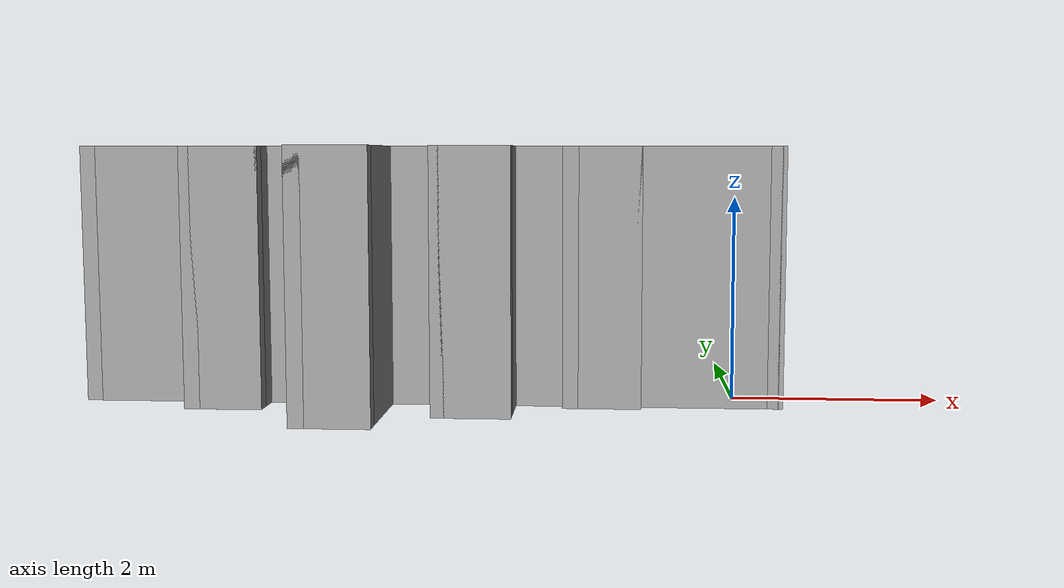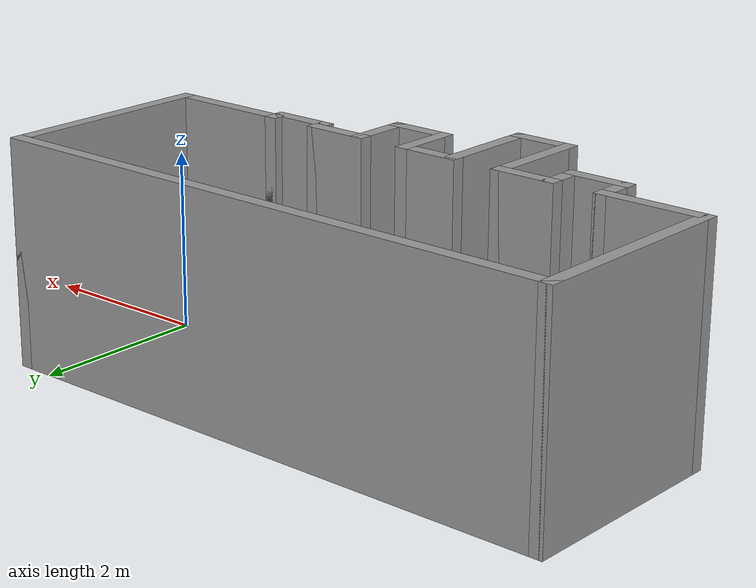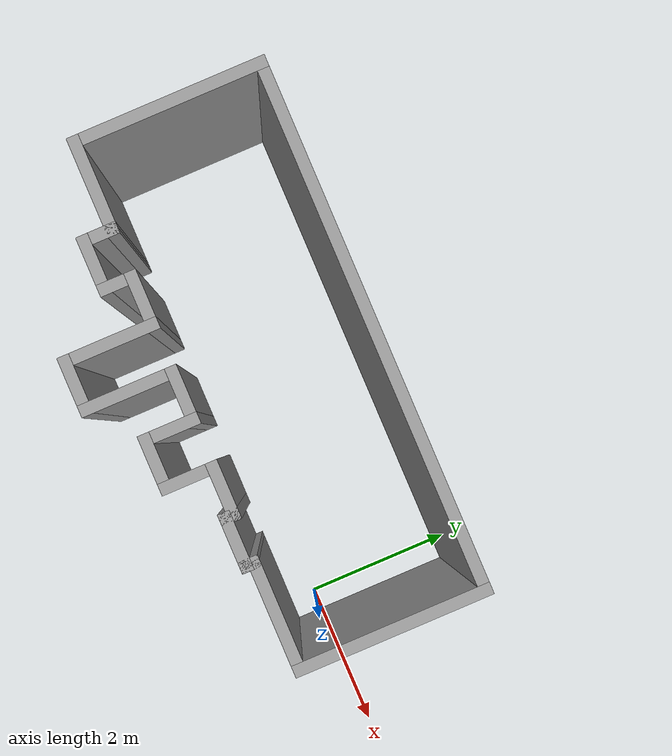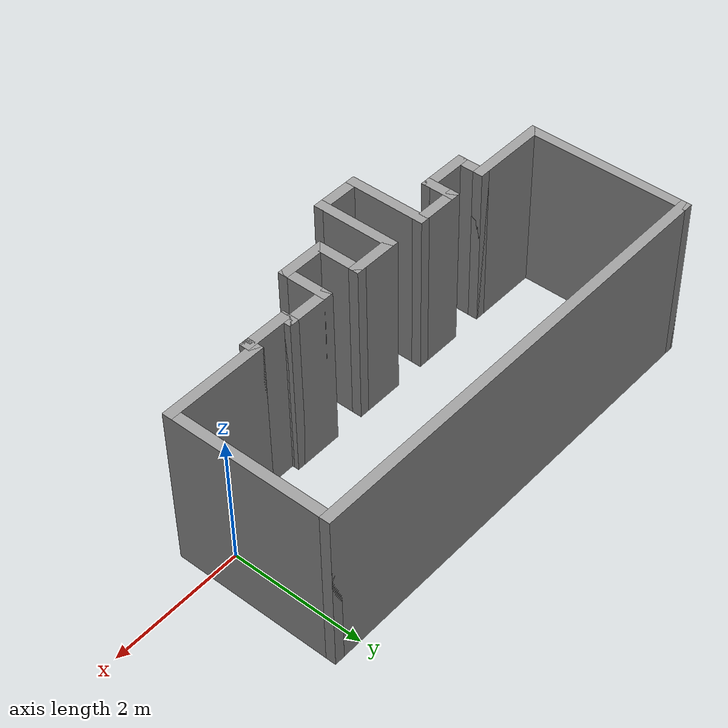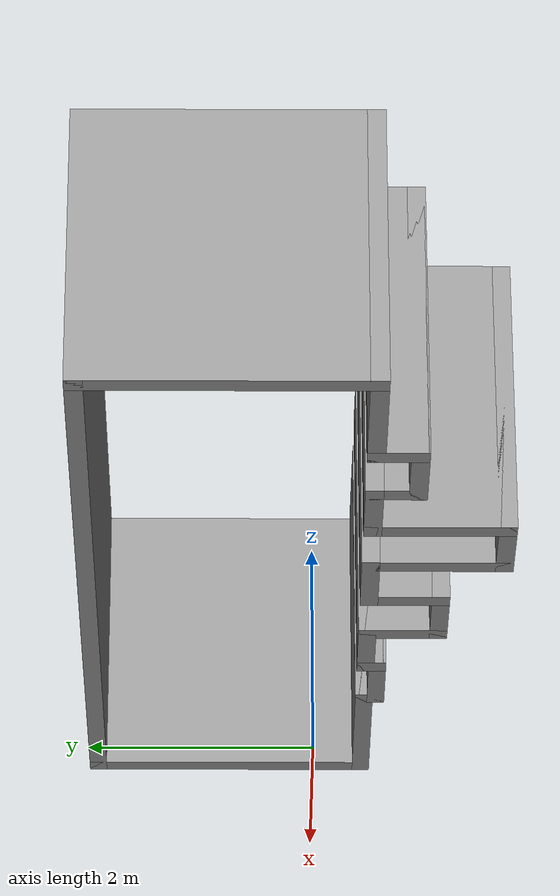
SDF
<?xml version='1.0'?>
<sdf version='1.7'>
  <model name='Parking_1'>
    <pose>-2.965 0.195 0 0 -0 0</pose>
    <link name='Wall_14'>
      <collision name='Wall_14_Collision'>
        <geometry>
          <box>
            <size>2.5 0.15 2.5</size>
          </box>
        </geometry>
        <pose>0 0 1.25 0 -0 0</pose>
      </collision>
      <visual name='Wall_14_Visual'>
        <pose>0 0 1.25 0 -0 0</pose>
        <geometry>
          <box>
            <size>2.5 0.15 2.5</size>
          </box>
        </geometry>
        <material>
          <script>
            <uri>file://media/materials/scripts/gazebo.material</uri>
            <name>Gazebo/Grey</name>
          </script>
          <ambient>1 1 1 1</ambient>
        </material>
        <meta>
          <layer>0</layer>
        </meta>
      </visual>
      <pose>3.325 0.55 0 0 -0 1.5708</pose>
    </link>
    <link name='Wall_23'>
      <collision name='Wall_23_Collision'>
        <geometry>
          <box>
            <size>0.25 0.15 2.5</size>
          </box>
        </geometry>
        <pose>0 0 1.25 0 -0 0</pose>
      </collision>
      <visual name='Wall_23_Visual'>
        <pose>0 0 1.25 0 -0 0</pose>
        <geometry>
          <box>
            <size>0.25 0.15 2.5</size>
          </box>
        </geometry>
        <material>
          <script>
            <uri>file://media/materials/scripts/gazebo.material</uri>
            <name>Gazebo/Grey</name>
          </script>
          <ambient>1 1 1 1</ambient>
        </material>
        <meta>
          <layer>0</layer>
        </meta>
      </visual>
      <pose>1.975 -0.675 0 0 -0 -1.5708</pose>
    </link>
    <link name='Wall_24'>
      <collision name='Wall_24_Collision'>
        <geometry>
          <box>
            <size>0.75 0.15 2.5</size>
          </box>
        </geometry>
        <pose>0 0 1.25 0 -0 0</pose>
      </collision>
      <visual name='Wall_24_Visual'>
        <pose>0 0 1.25 0 -0 0</pose>
        <geometry>
          <box>
            <size>0.75 0.15 2.5</size>
          </box>
        </geometry>
        <material>
          <script>
            <uri>file://media/materials/scripts/gazebo.material</uri>
            <name>Gazebo/Grey</name>
          </script>
          <ambient>1 1 1 1</ambient>
        </material>
        <meta>
          <layer>0</layer>
        </meta>
      </visual>
      <pose>1.675 -0.725 0 0 -0 3.14159</pose>
    </link>
    <link name='Wall_25'>
      <collision name='Wall_25_Collision'>
        <geometry>
          <box>
            <size>0.25 0.15 2.5</size>
          </box>
        </geometry>
        <pose>0 0 1.25 0 -0 0</pose>
      </collision>
      <visual name='Wall_25_Visual'>
        <pose>0 0 1.25 0 -0 0</pose>
        <geometry>
          <box>
            <size>0.25 0.15 2.5</size>
          </box>
        </geometry>
        <material>
          <script>
            <uri>file://media/materials/scripts/gazebo.material</uri>
            <name>Gazebo/Grey</name>
          </script>
          <ambient>1 1 1 1</ambient>
        </material>
        <meta>
          <layer>0</layer>
        </meta>
      </visual>
      <pose>1.375 -0.675 0 0 -0 1.5708</pose>
    </link>
    <link name='Wall_26'>
      <collision name='Wall_26_Collision'>
        <geometry>
          <box>
            <size>0.75 0.15 2.5</size>
          </box>
        </geometry>
        <pose>0 0 1.25 0 -0 0</pose>
      </collision>
      <visual name='Wall_26_Visual'>
        <pose>0 0 1.25 0 -0 0</pose>
        <geometry>
          <box>
            <size>0.75 0.15 2.5</size>
          </box>
        </geometry>
        <material>
          <script>
            <uri>file://media/materials/scripts/gazebo.material</uri>
            <name>Gazebo/Grey</name>
          </script>
          <ambient>1 1 1 1</ambient>
        </material>
        <meta>
          <layer>0</layer>
        </meta>
      </visual>
      <pose>1.075 -0.625 0 0 -0 3.14159</pose>
    </link>
    <link name='Wall_29'>
      <collision name='Wall_29_Collision'>
        <geometry>
          <box>
            <size>0.75 0.15 2.5</size>
          </box>
        </geometry>
        <pose>0 0 1.25 0 -0 0</pose>
      </collision>
      <visual name='Wall_29_Visual'>
        <pose>0 0 1.25 0 -0 0</pose>
        <geometry>
          <box>
            <size>0.75 0.15 2.5</size>
          </box>
        </geometry>
        <material>
          <script>
            <uri>file://media/materials/scripts/gazebo.material</uri>
            <name>Gazebo/Grey</name>
          </script>
          <ambient>1 1 1 1</ambient>
        </material>
        <meta>
          <layer>0</layer>
        </meta>
      </visual>
      <pose>0.775 -0.925 0 0 -0 -1.5708</pose>
    </link>
    <link name='Wall_30'>
      <collision name='Wall_30_Collision'>
        <geometry>
          <box>
            <size>0.75 0.15 2.5</size>
          </box>
        </geometry>
        <pose>0 0 1.25 0 -0 0</pose>
      </collision>
      <visual name='Wall_30_Visual'>
        <pose>0 0 1.25 0 -0 0</pose>
        <geometry>
          <box>
            <size>0.75 0.15 2.5</size>
          </box>
        </geometry>
        <material>
          <script>
            <uri>file://media/materials/scripts/gazebo.material</uri>
            <name>Gazebo/Grey</name>
          </script>
          <ambient>1 1 1 1</ambient>
        </material>
        <meta>
          <layer>0</layer>
        </meta>
      </visual>
      <pose>0.475 -1.225 0 0 -0 3.14159</pose>
    </link>
    <link name='Wall_31'>
      <collision name='Wall_31_Collision'>
        <geometry>
          <box>
            <size>0.75 0.15 2.5</size>
          </box>
        </geometry>
        <pose>0 0 1.25 0 -0 0</pose>
      </collision>
      <visual name='Wall_31_Visual'>
        <pose>0 0 1.25 0 -0 0</pose>
        <geometry>
          <box>
            <size>0.75 0.15 2.5</size>
          </box>
        </geometry>
        <material>
          <script>
            <uri>file://media/materials/scripts/gazebo.material</uri>
            <name>Gazebo/Grey</name>
          </script>
          <ambient>1 1 1 1</ambient>
        </material>
        <meta>
          <layer>0</layer>
        </meta>
      </visual>
      <pose>0.175 -0.925 0 0 -0 1.5708</pose>
    </link>
    <link name='Wall_33'>
      <collision name='Wall_33_Collision'>
        <geometry>
          <box>
            <size>0.75 0.15 2.5</size>
          </box>
        </geometry>
        <pose>0 0 1.25 0 -0 0</pose>
      </collision>
      <visual name='Wall_33_Visual'>
        <pose>0 0 1.25 0 -0 0</pose>
        <geometry>
          <box>
            <size>0.75 0.15 2.5</size>
          </box>
        </geometry>
        <material>
          <script>
            <uri>file://media/materials/scripts/gazebo.material</uri>
            <name>Gazebo/Grey</name>
          </script>
          <ambient>1 1 1 1</ambient>
        </material>
        <meta>
          <layer>0</layer>
        </meta>
      </visual>
      <pose>-0.125 -0.625 0 0 -0 3.14159</pose>
    </link>
    <link name='Wall_34'>
      <collision name='Wall_34_Collision'>
        <geometry>
          <box>
            <size>1.25 0.15 2.5</size>
          </box>
        </geometry>
        <pose>0 0 1.25 0 -0 0</pose>
      </collision>
      <visual name='Wall_34_Visual'>
        <pose>0 0 1.25 0 -0 0</pose>
        <geometry>
          <box>
            <size>1.25 0.15 2.5</size>
          </box>
        </geometry>
        <material>
          <script>
            <uri>file://media/materials/scripts/gazebo.material</uri>
            <name>Gazebo/Grey</name>
          </script>
          <ambient>1 1 1 1</ambient>
        </material>
        <meta>
          <layer>0</layer>
        </meta>
      </visual>
      <pose>-0.425 -1.175 0 0 -0 -1.5708</pose>
    </link>
    <link name='Wall_35'>
      <collision name='Wall_35_Collision'>
        <geometry>
          <box>
            <size>0.75 0.15 2.5</size>
          </box>
        </geometry>
        <pose>0 0 1.25 0 -0 0</pose>
      </collision>
      <visual name='Wall_35_Visual'>
        <pose>0 0 1.25 0 -0 0</pose>
        <geometry>
          <box>
            <size>0.75 0.15 2.5</size>
          </box>
        </geometry>
        <material>
          <script>
            <uri>file://media/materials/scripts/gazebo.material</uri>
            <name>Gazebo/Grey</name>
          </script>
          <ambient>1 1 1 1</ambient>
        </material>
        <meta>
          <layer>0</layer>
        </meta>
      </visual>
      <pose>-0.725 -1.725 0 0 -0 3.14159</pose>
    </link>
    <link name='Wall_36'>
      <collision name='Wall_36_Collision'>
        <geometry>
          <box>
            <size>1.25 0.15 2.5</size>
          </box>
        </geometry>
        <pose>0 0 1.25 0 -0 0</pose>
      </collision>
      <visual name='Wall_36_Visual'>
        <pose>0 0 1.25 0 -0 0</pose>
        <geometry>
          <box>
            <size>1.25 0.15 2.5</size>
          </box>
        </geometry>
        <material>
          <script>
            <uri>file://media/materials/scripts/gazebo.material</uri>
            <name>Gazebo/Grey</name>
          </script>
          <ambient>1 1 1 1</ambient>
        </material>
        <meta>
          <layer>0</layer>
        </meta>
      </visual>
      <pose>-1.025 -1.175 0 0 -0 1.5708</pose>
    </link>
    <link name='Wall_37'>
      <collision name='Wall_37_Collision'>
        <geometry>
          <box>
            <size>0.75 0.15 2.5</size>
          </box>
        </geometry>
        <pose>0 0 1.25 0 -0 0</pose>
      </collision>
      <visual name='Wall_37_Visual'>
        <pose>0 0 1.25 0 -0 0</pose>
        <geometry>
          <box>
            <size>0.75 0.15 2.5</size>
          </box>
        </geometry>
        <material>
          <script>
            <uri>file://media/materials/scripts/gazebo.material</uri>
            <name>Gazebo/Grey</name>
          </script>
          <ambient>1 1 1 1</ambient>
        </material>
        <meta>
          <layer>0</layer>
        </meta>
      </visual>
      <pose>-1.325 -0.625 0 0 -0 3.14159</pose>
    </link>
    <link name='Wall_38'>
      <collision name='Wall_38_Collision'>
        <geometry>
          <box>
            <size>0.5 0.15 2.5</size>
          </box>
        </geometry>
        <pose>0 0 1.25 0 -0 0</pose>
      </collision>
      <visual name='Wall_38_Visual'>
        <pose>0 0 1.25 0 -0 0</pose>
        <geometry>
          <box>
            <size>0.5 0.15 2.5</size>
          </box>
        </geometry>
        <material>
          <script>
            <uri>file://media/materials/scripts/gazebo.material</uri>
            <name>Gazebo/Grey</name>
          </script>
          <ambient>1 1 1 1</ambient>
        </material>
        <meta>
          <layer>0</layer>
        </meta>
      </visual>
      <pose>-1.625 -0.8 0 0 -0 -1.5708</pose>
    </link>
    <link name='Wall_39'>
      <collision name='Wall_39_Collision'>
        <geometry>
          <box>
            <size>0.75 0.15 2.5</size>
          </box>
        </geometry>
        <pose>0 0 1.25 0 -0 0</pose>
      </collision>
      <visual name='Wall_39_Visual'>
        <pose>0 0 1.25 0 -0 0</pose>
        <geometry>
          <box>
            <size>0.75 0.15 2.5</size>
          </box>
        </geometry>
        <material>
          <script>
            <uri>file://media/materials/scripts/gazebo.material</uri>
            <name>Gazebo/Grey</name>
          </script>
          <ambient>1 1 1 1</ambient>
        </material>
        <meta>
          <layer>0</layer>
        </meta>
      </visual>
      <pose>-1.925 -0.975 0 0 -0 3.14159</pose>
    </link>
    <link name='Wall_40'>
      <collision name='Wall_40_Collision'>
        <geometry>
          <box>
            <size>0.5 0.15 2.5</size>
          </box>
        </geometry>
        <pose>0 0 1.25 0 -0 0</pose>
      </collision>
      <visual name='Wall_40_Visual'>
        <pose>0 0 1.25 0 -0 0</pose>
        <geometry>
          <box>
            <size>0.5 0.15 2.5</size>
          </box>
        </geometry>
        <material>
          <script>
            <uri>file://media/materials/scripts/gazebo.material</uri>
            <name>Gazebo/Grey</name>
          </script>
          <ambient>1 1 1 1</ambient>
        </material>
        <meta>
          <layer>0</layer>
        </meta>
      </visual>
      <pose>-2.225 -0.8 0 0 -0 1.5708</pose>
    </link>
    <link name='Wall_41'>
      <collision name='Wall_41_Collision'>
        <geometry>
          <box>
            <size>0.15 0.15 2.5</size>
          </box>
        </geometry>
        <pose>0 0 1.25 0 -0 0</pose>
      </collision>
      <visual name='Wall_41_Visual'>
        <pose>0 0 1.25 0 -0 0</pose>
        <geometry>
          <box>
            <size>0.15 0.15 2.5</size>
          </box>
        </geometry>
        <material>
          <script>
            <uri>file://media/materials/scripts/gazebo.material</uri>
            <name>Gazebo/Grey</name>
          </script>
          <ambient>1 1 1 1</ambient>
        </material>
        <meta>
          <layer>0</layer>
        </meta>
      </visual>
      <pose>-2.225 -0.625 0 0 -0 0</pose>
    </link>
    <link name='Wall_43'>
      <collision name='Wall_43_Collision'>
        <geometry>
          <box>
            <size>1.25 0.15 2.5</size>
          </box>
        </geometry>
        <pose>0 0 1.25 0 -0 0</pose>
      </collision>
      <visual name='Wall_43_Visual'>
        <pose>0 0 1.25 0 -0 0</pose>
        <geometry>
          <box>
            <size>1.25 0.15 2.5</size>
          </box>
        </geometry>
        <material>
          <script>
            <uri>file://media/materials/scripts/gazebo.material</uri>
            <name>Gazebo/Grey</name>
          </script>
          <ambient>1 1 1 1</ambient>
        </material>
        <meta>
          <layer>0</layer>
        </meta>
      </visual>
      <pose>-2.775 -0.625 0 0 -0 3.14159</pose>
    </link>
    <link name='Wall_44'>
      <collision name='Wall_44_Collision'>
        <geometry>
          <box>
            <size>2.5 0.15 2.5</size>
          </box>
        </geometry>
        <pose>0 0 1.25 0 -0 0</pose>
      </collision>
      <visual name='Wall_44_Visual'>
        <pose>0 0 1.25 0 -0 0</pose>
        <geometry>
          <box>
            <size>2.5 0.15 2.5</size>
          </box>
        </geometry>
        <material>
          <script>
            <uri>file://media/materials/scripts/gazebo.material</uri>
            <name>Gazebo/Grey</name>
          </script>
          <ambient>1 1 1 1</ambient>
        </material>
        <meta>
          <layer>0</layer>
        </meta>
      </visual>
      <pose>-3.325 0.55 0 0 -0 1.5708</pose>
    </link>
    <link name='Wall_45'>
      <collision name='Wall_45_Collision'>
        <geometry>
          <box>
            <size>6.8 0.15 2.5</size>
          </box>
        </geometry>
        <pose>0 0 1.25 0 -0 0</pose>
      </collision>
      <visual name='Wall_45_Visual'>
        <pose>0 0 1.25 0 -0 0</pose>
        <geometry>
          <box>
            <size>6.8 0.15 2.5</size>
          </box>
        </geometry>
        <material>
          <script>
            <uri>file://media/materials/scripts/gazebo.material</uri>
            <name>Gazebo/Grey</name>
          </script>
          <ambient>1 1 1 1</ambient>
        </material>
        <meta>
          <layer>0</layer>
        </meta>
      </visual>
      <pose>0 1.725 0 0 -0 0</pose>
    </link>
    <link name='Wall_6'>
      <collision name='Wall_6_Collision'>
        <geometry>
          <box>
            <size>1.5 0.15 2.5</size>
          </box>
        </geometry>
        <pose>0 0 1.25 0 -0 0</pose>
      </collision>
      <visual name='Wall_6_Visual'>
        <pose>0 0 1.25 0 -0 0</pose>
        <geometry>
          <box>
            <size>1.5 0.15 2.5</size>
          </box>
        </geometry>
        <material>
          <script>
            <uri>file://media/materials/scripts/gazebo.material</uri>
            <name>Gazebo/Grey</name>
          </script>
          <ambient>1 1 1 1</ambient>
        </material>
        <meta>
          <layer>0</layer>
        </meta>
      </visual>
      <pose>2.65 -0.625 0 0 -0 0</pose>
    </link>
    <static>1</static>
  </model>
</sdf>
